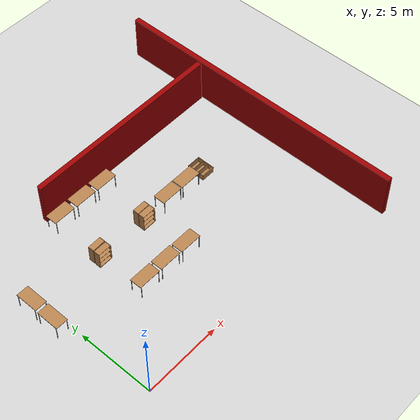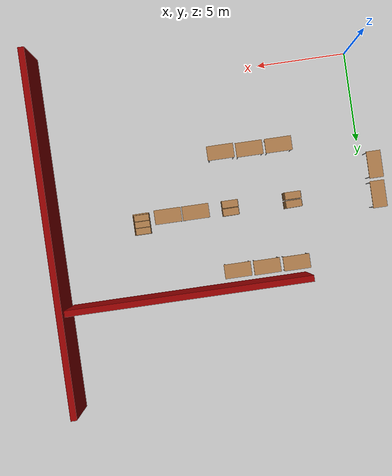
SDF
<sdf version="1.6">
 <world name="default">
  <model name="ground_plane">
   <static>1</static>
   <link name="link">
    <collision name="collision">
     <geometry><plane><normal>0 0 1</normal><size>100 100</size></plane></geometry>
     <surface>
      <contact><collide_bitmask>65535</collide_bitmask></contact>
      <friction><ode><mu>100</mu><mu2>50</mu2></ode></friction>
     </surface>
    </collision>
    <visual name="visual">
     <cast_shadows>0</cast_shadows>
     <geometry><plane><normal>0 0 1</normal><size>100 100</size></plane></geometry>
     <material>
      <script><uri>file://media/materials/scripts/gazebo.material</uri><name>Gazebo/Grey</name></script>
     </material>
    </visual>
   </link>
  </model>
  <model name="table">
   <static>1</static>
   <link name="link">
    <collision name="surface">
     <pose>0 0 1 0 -0 0</pose>
     <geometry><box><size>1.5 0.8 0.03</size></box></geometry>
     <surface><friction><ode><mu>0.6</mu><mu2>0.6</mu2></ode></friction></surface>
    </collision>
    <visual name="visual1">
     <pose>0 0 1 0 -0 0</pose>
     <geometry><box><size>1.5 0.8 0.03</size></box></geometry>
     <material>
      <script><uri>file://media/materials/scripts/gazebo.material</uri><name>Gazebo/Wood</name></script>
     </material>
    </visual>
    <collision name="front_left_leg">
     <pose>0.68 0.38 0.5 0 -0 0</pose>
     <geometry><cylinder><radius>0.02</radius><length>1</length></cylinder></geometry>
    </collision>
    <visual name="front_left_leg">
     <pose>0.68 0.38 0.5 0 -0 0</pose>
     <geometry><cylinder><radius>0.02</radius><length>1</length></cylinder></geometry>
     <material>
      <script><uri>file://media/materials/scripts/gazebo.material</uri><name>Gazebo/Grey</name></script>
     </material>
    </visual>
    <collision name="front_right_leg">
     <pose>0.68 -0.38 0.5 0 -0 0</pose>
     <geometry><cylinder><radius>0.02</radius><length>1</length></cylinder></geometry>
    </collision>
    <visual name="front_right_leg">
     <pose>0.68 -0.38 0.5 0 -0 0</pose>
     <geometry><cylinder><radius>0.02</radius><length>1</length></cylinder></geometry>
     <material>
      <script><uri>file://media/materials/scripts/gazebo.material</uri><name>Gazebo/Grey</name></script>
     </material>
    </visual>
    <collision name="back_right_leg">
     <pose>-0.68 -0.38 0.5 0 -0 0</pose>
     <geometry><cylinder><radius>0.02</radius><length>1</length></cylinder></geometry>
    </collision>
    <visual name="back_right_leg">
     <pose>-0.68 -0.38 0.5 0 -0 0</pose>
     <geometry><cylinder><radius>0.02</radius><length>1</length></cylinder></geometry>
     <material>
      <script><uri>file://media/materials/scripts/gazebo.material</uri><name>Gazebo/Grey</name></script>
     </material>
    </visual>
    <collision name="back_left_leg">
     <pose>-0.68 0.38 0.5 0 -0 0</pose>
     <geometry><cylinder><radius>0.02</radius><length>1</length></cylinder></geometry>
    </collision>
    <visual name="back_left_leg">
     <pose>-0.68 0.38 0.5 0 -0 0</pose>
     <geometry><cylinder><radius>0.02</radius><length>1</length></cylinder></geometry>
     <material>
      <script><uri>file://media/materials/scripts/gazebo.material</uri><name>Gazebo/Grey</name></script>
     </material>
    </visual>
   </link>
   <pose>4.47207 11.3188 0 0 -0 0</pose>
  </model>
  <model name="table_0">
   <static>1</static>
   <link name="link">
    <collision name="surface">
     <pose>0 0 1 0 -0 0</pose>
     <geometry><box><size>1.5 0.8 0.03</size></box></geometry>
     <surface><friction><ode><mu>0.6</mu><mu2>0.6</mu2></ode></friction></surface>
    </collision>
    <visual name="visual1">
     <pose>0 0 1 0 -0 0</pose>
     <geometry><box><size>1.5 0.8 0.03</size></box></geometry>
     <material>
      <script><uri>file://media/materials/scripts/gazebo.material</uri><name>Gazebo/Wood</name></script>
     </material>
    </visual>
    <collision name="front_left_leg">
     <pose>0.68 0.38 0.5 0 -0 0</pose>
     <geometry><cylinder><radius>0.02</radius><length>1</length></cylinder></geometry>
    </collision>
    <visual name="front_left_leg">
     <pose>0.68 0.38 0.5 0 -0 0</pose>
     <geometry><cylinder><radius>0.02</radius><length>1</length></cylinder></geometry>
     <material>
      <script><uri>file://media/materials/scripts/gazebo.material</uri><name>Gazebo/Grey</name></script>
     </material>
    </visual>
    <collision name="front_right_leg">
     <pose>0.68 -0.38 0.5 0 -0 0</pose>
     <geometry><cylinder><radius>0.02</radius><length>1</length></cylinder></geometry>
    </collision>
    <visual name="front_right_leg">
     <pose>0.68 -0.38 0.5 0 -0 0</pose>
     <geometry><cylinder><radius>0.02</radius><length>1</length></cylinder></geometry>
     <material>
      <script><uri>file://media/materials/scripts/gazebo.material</uri><name>Gazebo/Grey</name></script>
     </material>
    </visual>
    <collision name="back_right_leg">
     <pose>-0.68 -0.38 0.5 0 -0 0</pose>
     <geometry><cylinder><radius>0.02</radius><length>1</length></cylinder></geometry>
    </collision>
    <visual name="back_right_leg">
     <pose>-0.68 -0.38 0.5 0 -0 0</pose>
     <geometry><cylinder><radius>0.02</radius><length>1</length></cylinder></geometry>
     <material>
      <script><uri>file://media/materials/scripts/gazebo.material</uri><name>Gazebo/Grey</name></script>
     </material>
    </visual>
    <collision name="back_left_leg">
     <pose>-0.68 0.38 0.5 0 -0 0</pose>
     <geometry><cylinder><radius>0.02</radius><length>1</length></cylinder></geometry>
    </collision>
    <visual name="back_left_leg">
     <pose>-0.68 0.38 0.5 0 -0 0</pose>
     <geometry><cylinder><radius>0.02</radius><length>1</length></cylinder></geometry>
     <material>
      <script><uri>file://media/materials/scripts/gazebo.material</uri><name>Gazebo/Grey</name></script>
     </material>
    </visual>
   </link>
   <pose>6.13122 11.3044 0 0 -0 0</pose>
  </model>
  <model name="table_1">
   <static>1</static>
   <link name="link">
    <collision name="surface">
     <pose>0 0 1 0 -0 0</pose>
     <geometry><box><size>1.5 0.8 0.03</size></box></geometry>
     <surface><friction><ode><mu>0.6</mu><mu2>0.6</mu2></ode></friction></surface>
    </collision>
    <visual name="visual1">
     <pose>0 0 1 0 -0 0</pose>
     <geometry><box><size>1.5 0.8 0.03</size></box></geometry>
     <material>
      <script><uri>file://media/materials/scripts/gazebo.material</uri><name>Gazebo/Wood</name></script>
     </material>
    </visual>
    <collision name="front_left_leg">
     <pose>0.68 0.38 0.5 0 -0 0</pose>
     <geometry><cylinder><radius>0.02</radius><length>1</length></cylinder></geometry>
    </collision>
    <visual name="front_left_leg">
     <pose>0.68 0.38 0.5 0 -0 0</pose>
     <geometry><cylinder><radius>0.02</radius><length>1</length></cylinder></geometry>
     <material>
      <script><uri>file://media/materials/scripts/gazebo.material</uri><name>Gazebo/Grey</name></script>
     </material>
    </visual>
    <collision name="front_right_leg">
     <pose>0.68 -0.38 0.5 0 -0 0</pose>
     <geometry><cylinder><radius>0.02</radius><length>1</length></cylinder></geometry>
    </collision>
    <visual name="front_right_leg">
     <pose>0.68 -0.38 0.5 0 -0 0</pose>
     <geometry><cylinder><radius>0.02</radius><length>1</length></cylinder></geometry>
     <material>
      <script><uri>file://media/materials/scripts/gazebo.material</uri><name>Gazebo/Grey</name></script>
     </material>
    </visual>
    <collision name="back_right_leg">
     <pose>-0.68 -0.38 0.5 0 -0 0</pose>
     <geometry><cylinder><radius>0.02</radius><length>1</length></cylinder></geometry>
    </collision>
    <visual name="back_right_leg">
     <pose>-0.68 -0.38 0.5 0 -0 0</pose>
     <geometry><cylinder><radius>0.02</radius><length>1</length></cylinder></geometry>
     <material>
      <script><uri>file://media/materials/scripts/gazebo.material</uri><name>Gazebo/Grey</name></script>
     </material>
    </visual>
    <collision name="back_left_leg">
     <pose>-0.68 0.38 0.5 0 -0 0</pose>
     <geometry><cylinder><radius>0.02</radius><length>1</length></cylinder></geometry>
    </collision>
    <visual name="back_left_leg">
     <pose>-0.68 0.38 0.5 0 -0 0</pose>
     <geometry><cylinder><radius>0.02</radius><length>1</length></cylinder></geometry>
     <material>
      <script><uri>file://media/materials/scripts/gazebo.material</uri><name>Gazebo/Grey</name></script>
     </material>
    </visual>
   </link>
   <pose>7.77291 11.2867 0 0 -0 0</pose>
  </model>
  <model name="bookshelf_0">
   <static>1</static>
   <link name="link">
    <inertial><mass>1</mass></inertial>
    <collision name="back">
     <pose>0 0.005 0.6 0 -0 0</pose>
     <geometry><box><size>0.9 0.01 1.2</size></box></geometry>
    </collision>
    <visual name="visual1">
     <pose>0 0.005 0.6 0 -0 0</pose>
     <geometry><box><size>0.9 0.01 1.2</size></box></geometry>
     <material>
      <script><uri>file://media/materials/scripts/gazebo.material</uri><name>Gazebo/Wood</name></script>
     </material>
    </visual>
    <collision name="left_side">
     <pose>0.45 -0.195 0.6 0 -0 0</pose>
     <geometry><box><size>0.02 0.4 1.2</size></box></geometry>
    </collision>
    <visual name="visual2">
     <pose>0.45 -0.195 0.6 0 -0 0</pose>
     <geometry><box><size>0.02 0.4 1.2</size></box></geometry>
     <material>
      <script><uri>file://media/materials/scripts/gazebo.material</uri><name>Gazebo/Wood</name></script>
     </material>
    </visual>
    <collision name="right_side">
     <pose>-0.45 -0.195 0.6 0 -0 0</pose>
     <geometry><box><size>0.02 0.4 1.2</size></box></geometry>
    </collision>
    <visual name="visual3">
     <pose>-0.45 -0.195 0.6 0 -0 0</pose>
     <geometry><box><size>0.02 0.4 1.2</size></box></geometry>
     <material>
      <script><uri>file://media/materials/scripts/gazebo.material</uri><name>Gazebo/Wood</name></script>
     </material>
    </visual>
    <collision name="bottom">
     <pose>0 -0.195 0.03 0 -0 0</pose>
     <geometry><box><size>0.88 0.4 0.06</size></box></geometry>
    </collision>
    <visual name="visual4">
     <pose>0 -0.195 0.03 0 -0 0</pose>
     <geometry><box><size>0.88 0.4 0.06</size></box></geometry>
     <material>
      <script><uri>file://media/materials/scripts/gazebo.material</uri><name>Gazebo/Wood</name></script>
     </material>
    </visual>
    <collision name="top">
     <pose>0 -0.195 1.19 0 -0 0</pose>
     <geometry><box><size>0.88 0.4 0.02</size></box></geometry>
    </collision>
    <visual name="visual5">
     <pose>0 -0.195 1.19 0 -0 0</pose>
     <geometry><box><size>0.88 0.4 0.02</size></box></geometry>
     <material>
      <script><uri>file://media/materials/scripts/gazebo.material</uri><name>Gazebo/Wood</name></script>
     </material>
    </visual>
    <collision name="low_shelf">
     <pose>0 -0.195 0.43 0 -0 0</pose>
     <geometry><box><size>0.88 0.4 0.02</size></box></geometry>
    </collision>
    <visual name="visual6">
     <pose>0 -0.195 0.43 0 -0 0</pose>
     <geometry><box><size>0.88 0.4 0.02</size></box></geometry>
     <material>
      <script><uri>file://media/materials/scripts/gazebo.material</uri><name>Gazebo/Wood</name></script>
     </material>
    </visual>
    <collision name="high_shelf">
     <pose>0 -0.195 0.8 0 -0 0</pose>
     <geometry><box><size>0.88 0.4 0.02</size></box></geometry>
    </collision>
    <visual name="visual7">
     <pose>0 -0.195 0.8 0 -0 0</pose>
     <geometry><box><size>0.88 0.4 0.02</size></box></geometry>
     <material>
      <script><uri>file://media/materials/scripts/gazebo.material</uri><name>Gazebo/Wood</name></script>
     </material>
    </visual>
   </link>
   <pose>4.19826 7.86645 0 0 0 -3.11809</pose>
  </model>
  <model name="bookshelf_1">
   <static>1</static>
   <link name="link">
    <inertial><mass>1</mass></inertial>
    <collision name="back">
     <pose>0 0.005 0.6 0 -0 0</pose>
     <geometry><box><size>0.9 0.01 1.2</size></box></geometry>
    </collision>
    <visual name="visual1">
     <pose>0 0.005 0.6 0 -0 0</pose>
     <geometry><box><size>0.9 0.01 1.2</size></box></geometry>
     <material>
      <script><uri>file://media/materials/scripts/gazebo.material</uri><name>Gazebo/Wood</name></script>
     </material>
    </visual>
    <collision name="left_side">
     <pose>0.45 -0.195 0.6 0 -0 0</pose>
     <geometry><box><size>0.02 0.4 1.2</size></box></geometry>
    </collision>
    <visual name="visual2">
     <pose>0.45 -0.195 0.6 0 -0 0</pose>
     <geometry><box><size>0.02 0.4 1.2</size></box></geometry>
     <material>
      <script><uri>file://media/materials/scripts/gazebo.material</uri><name>Gazebo/Wood</name></script>
     </material>
    </visual>
    <collision name="right_side">
     <pose>-0.45 -0.195 0.6 0 -0 0</pose>
     <geometry><box><size>0.02 0.4 1.2</size></box></geometry>
    </collision>
    <visual name="visual3">
     <pose>-0.45 -0.195 0.6 0 -0 0</pose>
     <geometry><box><size>0.02 0.4 1.2</size></box></geometry>
     <material>
      <script><uri>file://media/materials/scripts/gazebo.material</uri><name>Gazebo/Wood</name></script>
     </material>
    </visual>
    <collision name="bottom">
     <pose>0 -0.195 0.03 0 -0 0</pose>
     <geometry><box><size>0.88 0.4 0.06</size></box></geometry>
    </collision>
    <visual name="visual4">
     <pose>0 -0.195 0.03 0 -0 0</pose>
     <geometry><box><size>0.88 0.4 0.06</size></box></geometry>
     <material>
      <script><uri>file://media/materials/scripts/gazebo.material</uri><name>Gazebo/Wood</name></script>
     </material>
    </visual>
    <collision name="top">
     <pose>0 -0.195 1.19 0 -0 0</pose>
     <geometry><box><size>0.88 0.4 0.02</size></box></geometry>
    </collision>
    <visual name="visual5">
     <pose>0 -0.195 1.19 0 -0 0</pose>
     <geometry><box><size>0.88 0.4 0.02</size></box></geometry>
     <material>
      <script><uri>file://media/materials/scripts/gazebo.material</uri><name>Gazebo/Wood</name></script>
     </material>
    </visual>
    <collision name="low_shelf">
     <pose>0 -0.195 0.43 0 -0 0</pose>
     <geometry><box><size>0.88 0.4 0.02</size></box></geometry>
    </collision>
    <visual name="visual6">
     <pose>0 -0.195 0.43 0 -0 0</pose>
     <geometry><box><size>0.88 0.4 0.02</size></box></geometry>
     <material>
      <script><uri>file://media/materials/scripts/gazebo.material</uri><name>Gazebo/Wood</name></script>
     </material>
    </visual>
    <collision name="high_shelf">
     <pose>0 -0.195 0.8 0 -0 0</pose>
     <geometry><box><size>0.88 0.4 0.02</size></box></geometry>
    </collision>
    <visual name="visual7">
     <pose>0 -0.195 0.8 0 -0 0</pose>
     <geometry><box><size>0.88 0.4 0.02</size></box></geometry>
     <material>
      <script><uri>file://media/materials/scripts/gazebo.material</uri><name>Gazebo/Wood</name></script>
     </material>
    </visual>
   </link>
   <pose>7.71048 7.81574 0 0 0 -3.1319</pose>
  </model>
  <model name="bookshelf_2">
   <static>1</static>
   <link name="link">
    <inertial><mass>1</mass></inertial>
    <collision name="back">
     <pose>0 0.005 0.6 0 -0 0</pose>
     <geometry><box><size>0.9 0.01 1.2</size></box></geometry>
    </collision>
    <visual name="visual1">
     <pose>0 0.005 0.6 0 -0 0</pose>
     <geometry><box><size>0.9 0.01 1.2</size></box></geometry>
     <material>
      <script><uri>file://media/materials/scripts/gazebo.material</uri><name>Gazebo/Wood</name></script>
     </material>
    </visual>
    <collision name="left_side">
     <pose>0.45 -0.195 0.6 0 -0 0</pose>
     <geometry><box><size>0.02 0.4 1.2</size></box></geometry>
    </collision>
    <visual name="visual2">
     <pose>0.45 -0.195 0.6 0 -0 0</pose>
     <geometry><box><size>0.02 0.4 1.2</size></box></geometry>
     <material>
      <script><uri>file://media/materials/scripts/gazebo.material</uri><name>Gazebo/Wood</name></script>
     </material>
    </visual>
    <collision name="right_side">
     <pose>-0.45 -0.195 0.6 0 -0 0</pose>
     <geometry><box><size>0.02 0.4 1.2</size></box></geometry>
    </collision>
    <visual name="visual3">
     <pose>-0.45 -0.195 0.6 0 -0 0</pose>
     <geometry><box><size>0.02 0.4 1.2</size></box></geometry>
     <material>
      <script><uri>file://media/materials/scripts/gazebo.material</uri><name>Gazebo/Wood</name></script>
     </material>
    </visual>
    <collision name="bottom">
     <pose>0 -0.195 0.03 0 -0 0</pose>
     <geometry><box><size>0.88 0.4 0.06</size></box></geometry>
    </collision>
    <visual name="visual4">
     <pose>0 -0.195 0.03 0 -0 0</pose>
     <geometry><box><size>0.88 0.4 0.06</size></box></geometry>
     <material>
      <script><uri>file://media/materials/scripts/gazebo.material</uri><name>Gazebo/Wood</name></script>
     </material>
    </visual>
    <collision name="top">
     <pose>0 -0.195 1.19 0 -0 0</pose>
     <geometry><box><size>0.88 0.4 0.02</size></box></geometry>
    </collision>
    <visual name="visual5">
     <pose>0 -0.195 1.19 0 -0 0</pose>
     <geometry><box><size>0.88 0.4 0.02</size></box></geometry>
     <material>
      <script><uri>file://media/materials/scripts/gazebo.material</uri><name>Gazebo/Wood</name></script>
     </material>
    </visual>
    <collision name="low_shelf">
     <pose>0 -0.195 0.43 0 -0 0</pose>
     <geometry><box><size>0.88 0.4 0.02</size></box></geometry>
    </collision>
    <visual name="visual6">
     <pose>0 -0.195 0.43 0 -0 0</pose>
     <geometry><box><size>0.88 0.4 0.02</size></box></geometry>
     <material>
      <script><uri>file://media/materials/scripts/gazebo.material</uri><name>Gazebo/Wood</name></script>
     </material>
    </visual>
    <collision name="high_shelf">
     <pose>0 -0.195 0.8 0 -0 0</pose>
     <geometry><box><size>0.88 0.4 0.02</size></box></geometry>
    </collision>
    <visual name="visual7">
     <pose>0 -0.195 0.8 0 -0 0</pose>
     <geometry><box><size>0.88 0.4 0.02</size></box></geometry>
     <material>
      <script><uri>file://media/materials/scripts/gazebo.material</uri><name>Gazebo/Wood</name></script>
     </material>
    </visual>
   </link>
   <pose>4.19078 7.7911 0 0 -0 0</pose>
  </model>
  <model name="bookshelf_3">
   <static>1</static>
   <link name="link">
    <inertial><mass>1</mass></inertial>
    <collision name="back">
     <pose>0 0.005 0.6 0 -0 0</pose>
     <geometry><box><size>0.9 0.01 1.2</size></box></geometry>
    </collision>
    <visual name="visual1">
     <pose>0 0.005 0.6 0 -0 0</pose>
     <geometry><box><size>0.9 0.01 1.2</size></box></geometry>
     <material>
      <script><uri>file://media/materials/scripts/gazebo.material</uri><name>Gazebo/Wood</name></script>
     </material>
    </visual>
    <collision name="left_side">
     <pose>0.45 -0.195 0.6 0 -0 0</pose>
     <geometry><box><size>0.02 0.4 1.2</size></box></geometry>
    </collision>
    <visual name="visual2">
     <pose>0.45 -0.195 0.6 0 -0 0</pose>
     <geometry><box><size>0.02 0.4 1.2</size></box></geometry>
     <material>
      <script><uri>file://media/materials/scripts/gazebo.material</uri><name>Gazebo/Wood</name></script>
     </material>
    </visual>
    <collision name="right_side">
     <pose>-0.45 -0.195 0.6 0 -0 0</pose>
     <geometry><box><size>0.02 0.4 1.2</size></box></geometry>
    </collision>
    <visual name="visual3">
     <pose>-0.45 -0.195 0.6 0 -0 0</pose>
     <geometry><box><size>0.02 0.4 1.2</size></box></geometry>
     <material>
      <script><uri>file://media/materials/scripts/gazebo.material</uri><name>Gazebo/Wood</name></script>
     </material>
    </visual>
    <collision name="bottom">
     <pose>0 -0.195 0.03 0 -0 0</pose>
     <geometry><box><size>0.88 0.4 0.06</size></box></geometry>
    </collision>
    <visual name="visual4">
     <pose>0 -0.195 0.03 0 -0 0</pose>
     <geometry><box><size>0.88 0.4 0.06</size></box></geometry>
     <material>
      <script><uri>file://media/materials/scripts/gazebo.material</uri><name>Gazebo/Wood</name></script>
     </material>
    </visual>
    <collision name="top">
     <pose>0 -0.195 1.19 0 -0 0</pose>
     <geometry><box><size>0.88 0.4 0.02</size></box></geometry>
    </collision>
    <visual name="visual5">
     <pose>0 -0.195 1.19 0 -0 0</pose>
     <geometry><box><size>0.88 0.4 0.02</size></box></geometry>
     <material>
      <script><uri>file://media/materials/scripts/gazebo.material</uri><name>Gazebo/Wood</name></script>
     </material>
    </visual>
    <collision name="low_shelf">
     <pose>0 -0.195 0.43 0 -0 0</pose>
     <geometry><box><size>0.88 0.4 0.02</size></box></geometry>
    </collision>
    <visual name="visual6">
     <pose>0 -0.195 0.43 0 -0 0</pose>
     <geometry><box><size>0.88 0.4 0.02</size></box></geometry>
     <material>
      <script><uri>file://media/materials/scripts/gazebo.material</uri><name>Gazebo/Wood</name></script>
     </material>
    </visual>
    <collision name="high_shelf">
     <pose>0 -0.195 0.8 0 -0 0</pose>
     <geometry><box><size>0.88 0.4 0.02</size></box></geometry>
    </collision>
    <visual name="visual7">
     <pose>0 -0.195 0.8 0 -0 0</pose>
     <geometry><box><size>0.88 0.4 0.02</size></box></geometry>
     <material>
      <script><uri>file://media/materials/scripts/gazebo.material</uri><name>Gazebo/Wood</name></script>
     </material>
    </visual>
   </link>
   <pose>7.70642 7.76994 0 0 -0 0</pose>
  </model>
  <model name="table_2">
   <static>1</static>
   <link name="link">
    <collision name="surface">
     <pose>0 0 1 0 -0 0</pose>
     <geometry><box><size>1.5 0.8 0.03</size></box></geometry>
     <surface><friction><ode><mu>0.6</mu><mu2>0.6</mu2></ode></friction></surface>
    </collision>
    <visual name="visual1">
     <pose>0 0 1 0 -0 0</pose>
     <geometry><box><size>1.5 0.8 0.03</size></box></geometry>
     <material>
      <script><uri>file://media/materials/scripts/gazebo.material</uri><name>Gazebo/Wood</name></script>
     </material>
    </visual>
    <collision name="front_left_leg">
     <pose>0.68 0.38 0.5 0 -0 0</pose>
     <geometry><cylinder><radius>0.02</radius><length>1</length></cylinder></geometry>
    </collision>
    <visual name="front_left_leg">
     <pose>0.68 0.38 0.5 0 -0 0</pose>
     <geometry><cylinder><radius>0.02</radius><length>1</length></cylinder></geometry>
     <material>
      <script><uri>file://media/materials/scripts/gazebo.material</uri><name>Gazebo/Grey</name></script>
     </material>
    </visual>
    <collision name="front_right_leg">
     <pose>0.68 -0.38 0.5 0 -0 0</pose>
     <geometry><cylinder><radius>0.02</radius><length>1</length></cylinder></geometry>
    </collision>
    <visual name="front_right_leg">
     <pose>0.68 -0.38 0.5 0 -0 0</pose>
     <geometry><cylinder><radius>0.02</radius><length>1</length></cylinder></geometry>
     <material>
      <script><uri>file://media/materials/scripts/gazebo.material</uri><name>Gazebo/Grey</name></script>
     </material>
    </visual>
    <collision name="back_right_leg">
     <pose>-0.68 -0.38 0.5 0 -0 0</pose>
     <geometry><cylinder><radius>0.02</radius><length>1</length></cylinder></geometry>
    </collision>
    <visual name="back_right_leg">
     <pose>-0.68 -0.38 0.5 0 -0 0</pose>
     <geometry><cylinder><radius>0.02</radius><length>1</length></cylinder></geometry>
     <material>
      <script><uri>file://media/materials/scripts/gazebo.material</uri><name>Gazebo/Grey</name></script>
     </material>
    </visual>
    <collision name="back_left_leg">
     <pose>-0.68 0.38 0.5 0 -0 0</pose>
     <geometry><cylinder><radius>0.02</radius><length>1</length></cylinder></geometry>
    </collision>
    <visual name="back_left_leg">
     <pose>-0.68 0.38 0.5 0 -0 0</pose>
     <geometry><cylinder><radius>0.02</radius><length>1</length></cylinder></geometry>
     <material>
      <script><uri>file://media/materials/scripts/gazebo.material</uri><name>Gazebo/Grey</name></script>
     </material>
    </visual>
   </link>
   <pose>4.56115 4.67955 0 0 -0 0</pose>
  </model>
  <model name="table_3">
   <static>1</static>
   <link name="link">
    <collision name="surface">
     <pose>0 0 1 0 -0 0</pose>
     <geometry><box><size>1.5 0.8 0.03</size></box></geometry>
     <surface><friction><ode><mu>0.6</mu><mu2>0.6</mu2></ode></friction></surface>
    </collision>
    <visual name="visual1">
     <pose>0 0 1 0 -0 0</pose>
     <geometry><box><size>1.5 0.8 0.03</size></box></geometry>
     <material>
      <script><uri>file://media/materials/scripts/gazebo.material</uri><name>Gazebo/Wood</name></script>
     </material>
    </visual>
    <collision name="front_left_leg">
     <pose>0.68 0.38 0.5 0 -0 0</pose>
     <geometry><cylinder><radius>0.02</radius><length>1</length></cylinder></geometry>
    </collision>
    <visual name="front_left_leg">
     <pose>0.68 0.38 0.5 0 -0 0</pose>
     <geometry><cylinder><radius>0.02</radius><length>1</length></cylinder></geometry>
     <material>
      <script><uri>file://media/materials/scripts/gazebo.material</uri><name>Gazebo/Grey</name></script>
     </material>
    </visual>
    <collision name="front_right_leg">
     <pose>0.68 -0.38 0.5 0 -0 0</pose>
     <geometry><cylinder><radius>0.02</radius><length>1</length></cylinder></geometry>
    </collision>
    <visual name="front_right_leg">
     <pose>0.68 -0.38 0.5 0 -0 0</pose>
     <geometry><cylinder><radius>0.02</radius><length>1</length></cylinder></geometry>
     <material>
      <script><uri>file://media/materials/scripts/gazebo.material</uri><name>Gazebo/Grey</name></script>
     </material>
    </visual>
    <collision name="back_right_leg">
     <pose>-0.68 -0.38 0.5 0 -0 0</pose>
     <geometry><cylinder><radius>0.02</radius><length>1</length></cylinder></geometry>
    </collision>
    <visual name="back_right_leg">
     <pose>-0.68 -0.38 0.5 0 -0 0</pose>
     <geometry><cylinder><radius>0.02</radius><length>1</length></cylinder></geometry>
     <material>
      <script><uri>file://media/materials/scripts/gazebo.material</uri><name>Gazebo/Grey</name></script>
     </material>
    </visual>
    <collision name="back_left_leg">
     <pose>-0.68 0.38 0.5 0 -0 0</pose>
     <geometry><cylinder><radius>0.02</radius><length>1</length></cylinder></geometry>
    </collision>
    <visual name="back_left_leg">
     <pose>-0.68 0.38 0.5 0 -0 0</pose>
     <geometry><cylinder><radius>0.02</radius><length>1</length></cylinder></geometry>
     <material>
      <script><uri>file://media/materials/scripts/gazebo.material</uri><name>Gazebo/Grey</name></script>
     </material>
    </visual>
   </link>
   <pose>6.19952 4.67486 0 0 -0 0</pose>
  </model>
  <model name="table_4">
   <static>1</static>
   <link name="link">
    <collision name="surface">
     <pose>0 0 1 0 -0 0</pose>
     <geometry><box><size>1.5 0.8 0.03</size></box></geometry>
     <surface><friction><ode><mu>0.6</mu><mu2>0.6</mu2></ode></friction></surface>
    </collision>
    <visual name="visual1">
     <pose>0 0 1 0 -0 0</pose>
     <geometry><box><size>1.5 0.8 0.03</size></box></geometry>
     <material>
      <script><uri>file://media/materials/scripts/gazebo.material</uri><name>Gazebo/Wood</name></script>
     </material>
    </visual>
    <collision name="front_left_leg">
     <pose>0.68 0.38 0.5 0 -0 0</pose>
     <geometry><cylinder><radius>0.02</radius><length>1</length></cylinder></geometry>
    </collision>
    <visual name="front_left_leg">
     <pose>0.68 0.38 0.5 0 -0 0</pose>
     <geometry><cylinder><radius>0.02</radius><length>1</length></cylinder></geometry>
     <material>
      <script><uri>file://media/materials/scripts/gazebo.material</uri><name>Gazebo/Grey</name></script>
     </material>
    </visual>
    <collision name="front_right_leg">
     <pose>0.68 -0.38 0.5 0 -0 0</pose>
     <geometry><cylinder><radius>0.02</radius><length>1</length></cylinder></geometry>
    </collision>
    <visual name="front_right_leg">
     <pose>0.68 -0.38 0.5 0 -0 0</pose>
     <geometry><cylinder><radius>0.02</radius><length>1</length></cylinder></geometry>
     <material>
      <script><uri>file://media/materials/scripts/gazebo.material</uri><name>Gazebo/Grey</name></script>
     </material>
    </visual>
    <collision name="back_right_leg">
     <pose>-0.68 -0.38 0.5 0 -0 0</pose>
     <geometry><cylinder><radius>0.02</radius><length>1</length></cylinder></geometry>
    </collision>
    <visual name="back_right_leg">
     <pose>-0.68 -0.38 0.5 0 -0 0</pose>
     <geometry><cylinder><radius>0.02</radius><length>1</length></cylinder></geometry>
     <material>
      <script><uri>file://media/materials/scripts/gazebo.material</uri><name>Gazebo/Grey</name></script>
     </material>
    </visual>
    <collision name="back_left_leg">
     <pose>-0.68 0.38 0.5 0 -0 0</pose>
     <geometry><cylinder><radius>0.02</radius><length>1</length></cylinder></geometry>
    </collision>
    <visual name="back_left_leg">
     <pose>-0.68 0.38 0.5 0 -0 0</pose>
     <geometry><cylinder><radius>0.02</radius><length>1</length></cylinder></geometry>
     <material>
      <script><uri>file://media/materials/scripts/gazebo.material</uri><name>Gazebo/Grey</name></script>
     </material>
    </visual>
   </link>
   <pose>7.81299 4.6334 0 0 -0 0</pose>
  </model>
  <model name="table_5">
   <static>1</static>
   <link name="link">
    <collision name="surface">
     <pose>0 0 1 0 -0 0</pose>
     <geometry><box><size>1.5 0.8 0.03</size></box></geometry>
     <surface><friction><ode><mu>0.6</mu><mu2>0.6</mu2></ode></friction></surface>
    </collision>
    <visual name="visual1">
     <pose>0 0 1 0 -0 0</pose>
     <geometry><box><size>1.5 0.8 0.03</size></box></geometry>
     <material>
      <script><uri>file://media/materials/scripts/gazebo.material</uri><name>Gazebo/Wood</name></script>
     </material>
    </visual>
    <collision name="front_left_leg">
     <pose>0.68 0.38 0.5 0 -0 0</pose>
     <geometry><cylinder><radius>0.02</radius><length>1</length></cylinder></geometry>
    </collision>
    <visual name="front_left_leg">
     <pose>0.68 0.38 0.5 0 -0 0</pose>
     <geometry><cylinder><radius>0.02</radius><length>1</length></cylinder></geometry>
     <material>
      <script><uri>file://media/materials/scripts/gazebo.material</uri><name>Gazebo/Grey</name></script>
     </material>
    </visual>
    <collision name="front_right_leg">
     <pose>0.68 -0.38 0.5 0 -0 0</pose>
     <geometry><cylinder><radius>0.02</radius><length>1</length></cylinder></geometry>
    </collision>
    <visual name="front_right_leg">
     <pose>0.68 -0.38 0.5 0 -0 0</pose>
     <geometry><cylinder><radius>0.02</radius><length>1</length></cylinder></geometry>
     <material>
      <script><uri>file://media/materials/scripts/gazebo.material</uri><name>Gazebo/Grey</name></script>
     </material>
    </visual>
    <collision name="back_right_leg">
     <pose>-0.68 -0.38 0.5 0 -0 0</pose>
     <geometry><cylinder><radius>0.02</radius><length>1</length></cylinder></geometry>
    </collision>
    <visual name="back_right_leg">
     <pose>-0.68 -0.38 0.5 0 -0 0</pose>
     <geometry><cylinder><radius>0.02</radius><length>1</length></cylinder></geometry>
     <material>
      <script><uri>file://media/materials/scripts/gazebo.material</uri><name>Gazebo/Grey</name></script>
     </material>
    </visual>
    <collision name="back_left_leg">
     <pose>-0.68 0.38 0.5 0 -0 0</pose>
     <geometry><cylinder><radius>0.02</radius><length>1</length></cylinder></geometry>
    </collision>
    <visual name="back_left_leg">
     <pose>-0.68 0.38 0.5 0 -0 0</pose>
     <geometry><cylinder><radius>0.02</radius><length>1</length></cylinder></geometry>
     <material>
      <script><uri>file://media/materials/scripts/gazebo.material</uri><name>Gazebo/Grey</name></script>
     </material>
    </visual>
   </link>
   <pose>9.6451 7.74871 0 0 -0 0</pose>
  </model>
  <model name="table_6">
   <static>1</static>
   <link name="link">
    <collision name="surface">
     <pose>0 0 1 0 -0 0</pose>
     <geometry><box><size>1.5 0.8 0.03</size></box></geometry>
     <surface><friction><ode><mu>0.6</mu><mu2>0.6</mu2></ode></friction></surface>
    </collision>
    <visual name="visual1">
     <pose>0 0 1 0 -0 0</pose>
     <geometry><box><size>1.5 0.8 0.03</size></box></geometry>
     <material>
      <script><uri>file://media/materials/scripts/gazebo.material</uri><name>Gazebo/Wood</name></script>
     </material>
    </visual>
    <collision name="front_left_leg">
     <pose>0.68 0.38 0.5 0 -0 0</pose>
     <geometry><cylinder><radius>0.02</radius><length>1</length></cylinder></geometry>
    </collision>
    <visual name="front_left_leg">
     <pose>0.68 0.38 0.5 0 -0 0</pose>
     <geometry><cylinder><radius>0.02</radius><length>1</length></cylinder></geometry>
     <material>
      <script><uri>file://media/materials/scripts/gazebo.material</uri><name>Gazebo/Grey</name></script>
     </material>
    </visual>
    <collision name="front_right_leg">
     <pose>0.68 -0.38 0.5 0 -0 0</pose>
     <geometry><cylinder><radius>0.02</radius><length>1</length></cylinder></geometry>
    </collision>
    <visual name="front_right_leg">
     <pose>0.68 -0.38 0.5 0 -0 0</pose>
     <geometry><cylinder><radius>0.02</radius><length>1</length></cylinder></geometry>
     <material>
      <script><uri>file://media/materials/scripts/gazebo.material</uri><name>Gazebo/Grey</name></script>
     </material>
    </visual>
    <collision name="back_right_leg">
     <pose>-0.68 -0.38 0.5 0 -0 0</pose>
     <geometry><cylinder><radius>0.02</radius><length>1</length></cylinder></geometry>
    </collision>
    <visual name="back_right_leg">
     <pose>-0.68 -0.38 0.5 0 -0 0</pose>
     <geometry><cylinder><radius>0.02</radius><length>1</length></cylinder></geometry>
     <material>
      <script><uri>file://media/materials/scripts/gazebo.material</uri><name>Gazebo/Grey</name></script>
     </material>
    </visual>
    <collision name="back_left_leg">
     <pose>-0.68 0.38 0.5 0 -0 0</pose>
     <geometry><cylinder><radius>0.02</radius><length>1</length></cylinder></geometry>
    </collision>
    <visual name="back_left_leg">
     <pose>-0.68 0.38 0.5 0 -0 0</pose>
     <geometry><cylinder><radius>0.02</radius><length>1</length></cylinder></geometry>
     <material>
      <script><uri>file://media/materials/scripts/gazebo.material</uri><name>Gazebo/Grey</name></script>
     </material>
    </visual>
   </link>
   <pose>11.2038 7.74465 0 0 -0 0</pose>
  </model>
  <model name="bookshelf_4">
   <link name="link">
    <inertial>
     <mass>1</mass>
     <inertia><ixx>1</ixx><ixy>0</ixy><ixz>0</ixz><iyy>1</iyy><iyz>0</iyz><izz>1</izz></inertia>
    </inertial>
    <visual name="visual1">
     <pose>0 0.005 0.6 0 -0 0</pose>
     <geometry><box><size>0.9 0.01 1.2</size></box></geometry>
     <material>
      <script><uri>file://media/materials/scripts/gazebo.material</uri><name>Gazebo/Wood</name></script>
      <shader type="vertex"><normal_map>__default__</normal_map></shader>
     </material>
    </visual>
    <visual name="visual2">
     <pose>0.45 -0.195 0.6 0 -0 0</pose>
     <geometry><box><size>0.02 0.4 1.2</size></box></geometry>
     <material>
      <script><uri>file://media/materials/scripts/gazebo.material</uri><name>Gazebo/Wood</name></script>
      <shader type="vertex"><normal_map>__default__</normal_map></shader>
     </material>
    </visual>
    <visual name="visual3">
     <pose>-0.45 -0.195 0.6 0 -0 0</pose>
     <geometry><box><size>0.02 0.4 1.2</size></box></geometry>
     <material>
      <script><uri>file://media/materials/scripts/gazebo.material</uri><name>Gazebo/Wood</name></script>
      <shader type="vertex"><normal_map>__default__</normal_map></shader>
     </material>
    </visual>
    <visual name="visual4">
     <pose>0 -0.195 0.03 0 -0 0</pose>
     <geometry><box><size>0.88 0.4 0.06</size></box></geometry>
     <material>
      <script><uri>file://media/materials/scripts/gazebo.material</uri><name>Gazebo/Wood</name></script>
      <shader type="vertex"><normal_map>__default__</normal_map></shader>
     </material>
    </visual>
    <visual name="visual5">
     <pose>0 -0.195 1.19 0 -0 0</pose>
     <geometry><box><size>0.88 0.4 0.02</size></box></geometry>
     <material>
      <script><uri>file://media/materials/scripts/gazebo.material</uri><name>Gazebo/Wood</name></script>
      <shader type="vertex"><normal_map>__default__</normal_map></shader>
     </material>
    </visual>
    <visual name="visual6">
     <pose>0 -0.195 0.43 0 -0 0</pose>
     <geometry><box><size>0.88 0.4 0.02</size></box></geometry>
     <material>
      <script><uri>file://media/materials/scripts/gazebo.material</uri><name>Gazebo/Wood</name></script>
      <shader type="vertex"><normal_map>__default__</normal_map></shader>
     </material>
    </visual>
    <visual name="visual7">
     <pose>0 -0.195 0.8 0 -0 0</pose>
     <geometry><box><size>0.88 0.4 0.02</size></box></geometry>
     <material>
      <script><uri>file://media/materials/scripts/gazebo.material</uri><name>Gazebo/Wood</name></script>
      <shader type="vertex"><normal_map>__default__</normal_map></shader>
     </material>
    </visual>
   </link>
   <static>1</static>
   <pose>12.7552 7.3778 -0.002559 -1.5675 0 0</pose>
  </model>
  <model name="table_2_clone_0">
   <static>1</static>
   <link name="link">
    <collision name="surface">
     <pose>0 0 1 0 -0 0</pose>
     <geometry><box><size>1.5 0.8 0.03</size></box></geometry>
     <surface><friction><ode><mu>0.6</mu><mu2>0.6</mu2></ode></friction></surface>
    </collision>
    <visual name="visual1">
     <pose>0 0 1 0 -0 0</pose>
     <geometry><box><size>1.5 0.8 0.03</size></box></geometry>
     <material>
      <script><uri>file://media/materials/scripts/gazebo.material</uri><name>Gazebo/Wood</name></script>
     </material>
    </visual>
    <collision name="front_left_leg">
     <pose>0.68 0.38 0.5 0 -0 0</pose>
     <geometry><cylinder><radius>0.02</radius><length>1</length></cylinder></geometry>
    </collision>
    <visual name="front_left_leg">
     <pose>0.68 0.38 0.5 0 -0 0</pose>
     <geometry><cylinder><radius>0.02</radius><length>1</length></cylinder></geometry>
     <material>
      <script><uri>file://media/materials/scripts/gazebo.material</uri><name>Gazebo/Grey</name></script>
     </material>
    </visual>
    <collision name="front_right_leg">
     <pose>0.68 -0.38 0.5 0 -0 0</pose>
     <geometry><cylinder><radius>0.02</radius><length>1</length></cylinder></geometry>
    </collision>
    <visual name="front_right_leg">
     <pose>0.68 -0.38 0.5 0 -0 0</pose>
     <geometry><cylinder><radius>0.02</radius><length>1</length></cylinder></geometry>
     <material>
      <script><uri>file://media/materials/scripts/gazebo.material</uri><name>Gazebo/Grey</name></script>
     </material>
    </visual>
    <collision name="back_right_leg">
     <pose>-0.68 -0.38 0.5 0 -0 0</pose>
     <geometry><cylinder><radius>0.02</radius><length>1</length></cylinder></geometry>
    </collision>
    <visual name="back_right_leg">
     <pose>-0.68 -0.38 0.5 0 -0 0</pose>
     <geometry><cylinder><radius>0.02</radius><length>1</length></cylinder></geometry>
     <material>
      <script><uri>file://media/materials/scripts/gazebo.material</uri><name>Gazebo/Grey</name></script>
     </material>
    </visual>
    <collision name="back_left_leg">
     <pose>-0.68 0.38 0.5 0 -0 0</pose>
     <geometry><cylinder><radius>0.02</radius><length>1</length></cylinder></geometry>
    </collision>
    <visual name="back_left_leg">
     <pose>-0.68 0.38 0.5 0 -0 0</pose>
     <geometry><cylinder><radius>0.02</radius><length>1</length></cylinder></geometry>
     <material>
      <script><uri>file://media/materials/scripts/gazebo.material</uri><name>Gazebo/Grey</name></script>
     </material>
    </visual>
   </link>
   <pose>-0.573278 8.19478 0 0 -0 1.56952</pose>
  </model>
  <model name="table_2_clone_0_clone">
   <static>1</static>
   <link name="link">
    <collision name="surface">
     <pose>0 0 1 0 -0 0</pose>
     <geometry><box><size>1.5 0.8 0.03</size></box></geometry>
     <surface><friction><ode><mu>0.6</mu><mu2>0.6</mu2></ode></friction></surface>
    </collision>
    <visual name="visual1">
     <pose>0 0 1 0 -0 0</pose>
     <geometry><box><size>1.5 0.8 0.03</size></box></geometry>
     <material>
      <script><uri>file://media/materials/scripts/gazebo.material</uri><name>Gazebo/Wood</name></script>
     </material>
    </visual>
    <collision name="front_left_leg">
     <pose>0.68 0.38 0.5 0 -0 0</pose>
     <geometry><cylinder><radius>0.02</radius><length>1</length></cylinder></geometry>
    </collision>
    <visual name="front_left_leg">
     <pose>0.68 0.38 0.5 0 -0 0</pose>
     <geometry><cylinder><radius>0.02</radius><length>1</length></cylinder></geometry>
     <material>
      <script><uri>file://media/materials/scripts/gazebo.material</uri><name>Gazebo/Grey</name></script>
     </material>
    </visual>
    <collision name="front_right_leg">
     <pose>0.68 -0.38 0.5 0 -0 0</pose>
     <geometry><cylinder><radius>0.02</radius><length>1</length></cylinder></geometry>
    </collision>
    <visual name="front_right_leg">
     <pose>0.68 -0.38 0.5 0 -0 0</pose>
     <geometry><cylinder><radius>0.02</radius><length>1</length></cylinder></geometry>
     <material>
      <script><uri>file://media/materials/scripts/gazebo.material</uri><name>Gazebo/Grey</name></script>
     </material>
    </visual>
    <collision name="back_right_leg">
     <pose>-0.68 -0.38 0.5 0 -0 0</pose>
     <geometry><cylinder><radius>0.02</radius><length>1</length></cylinder></geometry>
    </collision>
    <visual name="back_right_leg">
     <pose>-0.68 -0.38 0.5 0 -0 0</pose>
     <geometry><cylinder><radius>0.02</radius><length>1</length></cylinder></geometry>
     <material>
      <script><uri>file://media/materials/scripts/gazebo.material</uri><name>Gazebo/Grey</name></script>
     </material>
    </visual>
    <collision name="back_left_leg">
     <pose>-0.68 0.38 0.5 0 -0 0</pose>
     <geometry><cylinder><radius>0.02</radius><length>1</length></cylinder></geometry>
    </collision>
    <visual name="back_left_leg">
     <pose>-0.68 0.38 0.5 0 -0 0</pose>
     <geometry><cylinder><radius>0.02</radius><length>1</length></cylinder></geometry>
     <material>
      <script><uri>file://media/materials/scripts/gazebo.material</uri><name>Gazebo/Grey</name></script>
     </material>
    </visual>
   </link>
   <pose>-0.597903 6.52995 0 0 -0 1.56952</pose>
  </model>
  <model name="Final_Wall_1">
   <link name="link">
    <inertial>
     <mass>13.5935</mass>
     <inertia><ixx>10.3875</ixx><ixy>0</ixy><ixz>0</ixz><iyy>211.356</iyy><iyz>0</iyz><izz>201.229</izz></inertia>
    </inertial>
    <pose>2.63473 0 1.04244 0 -0 0</pose>
    <gravity>0</gravity>
    <visual name="visual">
     <geometry><box><size>13.3238 0.339044 3.00914</size></box></geometry>
     <material>
      <script><name>Gazebo/Grey</name><uri>file://media/materials/scripts/gazebo.material</uri></script>
      <ambient>0.6 0 0 0</ambient>
      <shader type="vertex"><normal_map>__default__</normal_map></shader>
      <diffuse>0.7 0.7 0.7 1</diffuse>
      <specular>0.01 0.01 0.01 1</specular>
      <emissive>0 0 0 1</emissive>
     </material>
    </visual>
    <collision name="collision">
     <geometry><box><size>13.3238 0.339044 3.00914</size></box></geometry>
     <surface>
      <friction>
       <ode><mu>1</mu><mu2>1</mu2><fdir1>0 0 0</fdir1><slip1>0</slip1><slip2>0</slip2></ode>
       <torsional>
        <coefficient>1</coefficient>
        <patch_radius>0</patch_radius>
        <surface_radius>0</surface_radius>
        <use_patch_radius>1</use_patch_radius>
        <ode><slip>0</slip></ode>
       </torsional>
      </friction>
      <bounce><restitution_coefficient>0</restitution_coefficient><threshold>1e+06</threshold></bounce>
      <contact>
       <collide_without_contact>0</collide_without_contact>
       <collide_without_contact_bitmask>1</collide_without_contact_bitmask>
       <collide_bitmask>1</collide_bitmask>
       <ode>
        <soft_cfm>0</soft_cfm>
        <soft_erp>0.2</soft_erp>
        <kp>1e+13</kp>
        <kd>1</kd>
        <max_vel>0.01</max_vel>
        <min_depth>0</min_depth>
       </ode>
       <bullet>
        <split_impulse>1</split_impulse>
        <split_impulse_penetration_threshold>-0.01</split_impulse_penetration_threshold>
        <soft_cfm>0</soft_cfm>
        <soft_erp>0.2</soft_erp>
        <kp>1e+13</kp>
        <kd>1</kd>
       </bullet>
      </contact>
     </surface>
    </collision>
   </link>
   <static>0</static>
   <pose>7.95043 12.1534 0.5 0 -0 0</pose>
  </model>
  <model name="Final_Wall_1_clone_clone_0">
   <link name="link">
    <inertial>
     <mass>20.3054</mass>
     <inertia><ixx>15.5165</ixx><ixy>0</ixy><ixz>0</ixz><iyy>685.587</iyy><iyz>0</iyz><izz>670.459</izz></inertia>
    </inertial>
    <pose>4.24868 -1.86827 1.04244 0 -0 0</pose>
    <gravity>0</gravity>
    <visual name="visual">
     <geometry><box><size>19.9025 0.339044 3.00914</size></box></geometry>
     <material>
      <script><name>Gazebo/Grey</name><uri>file://media/materials/scripts/gazebo.material</uri></script>
      <ambient>0.6 0 0 0</ambient>
      <shader type="vertex"><normal_map>__default__</normal_map></shader>
      <diffuse>0.7 0.7 0.7 1</diffuse>
      <specular>0.01 0.01 0.01 1</specular>
      <emissive>0 0 0 1</emissive>
     </material>
    </visual>
    <collision name="collision">
     <geometry><box><size>19.9025 0.339044 3.00914</size></box></geometry>
     <surface>
      <friction>
       <ode><mu>1</mu><mu2>1</mu2><fdir1>0 0 0</fdir1><slip1>0</slip1><slip2>0</slip2></ode>
       <torsional>
        <coefficient>1</coefficient>
        <patch_radius>0</patch_radius>
        <surface_radius>0</surface_radius>
        <use_patch_radius>1</use_patch_radius>
        <ode><slip>0</slip></ode>
       </torsional>
      </friction>
      <bounce><restitution_coefficient>0</restitution_coefficient><threshold>1e+06</threshold></bounce>
      <contact>
       <collide_without_contact>0</collide_without_contact>
       <collide_without_contact_bitmask>1</collide_without_contact_bitmask>
       <collide_bitmask>1</collide_bitmask>
       <ode>
        <soft_cfm>0</soft_cfm>
        <soft_erp>0.2</soft_erp>
        <kp>1e+13</kp>
        <kd>1</kd>
        <max_vel>0.01</max_vel>
        <min_depth>0</min_depth>
       </ode>
       <bullet>
        <split_impulse>1</split_impulse>
        <split_impulse_penetration_threshold>-0.01</split_impulse_penetration_threshold>
        <soft_cfm>0</soft_cfm>
        <soft_erp>0.2</soft_erp>
        <kp>1e+13</kp>
        <kd>1</kd>
       </bullet>
      </contact>
     </surface>
    </collision>
   </link>
   <static>0</static>
   <pose>15.6572 3.59836 0.5 0 -0 1.57</pose>
  </model>
 </world>
</sdf>
